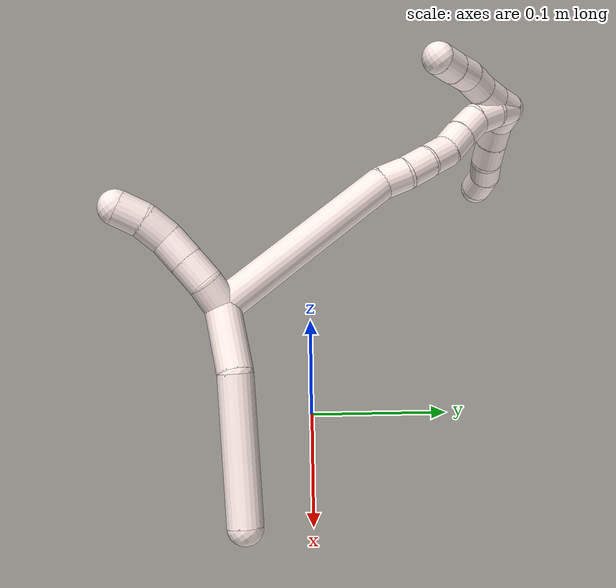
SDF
<sdf version="1.7">
 <world name="default">
  <model name="11">
   <static>0</static>
   <link name="11">
    <collision name="collision-cylinder-e_1_2_8">
     <pose>0.01097 -0.008438 0.019699 0.404694 0.473123 0.098835</pose>
     <geometry><cylinder><radius>0.0125</radius><length>0.048148</length></cylinder></geometry>
     <surface>
      <friction><ode><mu>1.16</mu><mu2>1.16</mu2><slip1>0</slip1><slip2>0</slip2></ode></friction>
      <contact><ode><kp>1e+06</kp><kd>1</kd><max_vel>0</max_vel><min_depth>0.001</min_depth></ode></contact>
     </surface>
    </collision>
    <visual name="visual-cylinder-e_1_2_8">
     <pose>0.01097 -0.008438 0.019699 0.404694 0.473123 0.098835</pose>
     <geometry><cylinder><radius>0.0125</radius><length>0.048148</length></cylinder></geometry>
     <material><ambient>1 0.933333 0.909804 1</ambient></material>
    </visual>
    <collision name="collision-cylinder-e_2_8_6">
     <pose>0.050962 -0.01834 0.081218 0.035005 0.606374 0.010952</pose>
     <geometry><cylinder><radius>0.0125</radius><length>0.101852</length></cylinder></geometry>
     <surface>
      <friction><ode><mu>1.16</mu><mu2>1.16</mu2><slip1>0</slip1><slip2>0</slip2></ode></friction>
      <contact><ode><kp>1e+06</kp><kd>1</kd><max_vel>0</max_vel><min_depth>0.001</min_depth></ode></contact>
     </surface>
    </collision>
    <visual name="visual-cylinder-e_2_8_6">
     <pose>0.050962 -0.01834 0.081218 0.035005 0.606374 0.010952</pose>
     <geometry><cylinder><radius>0.0125</radius><length>0.101852</length></cylinder></geometry>
     <material><ambient>1 0.933333 0.909804 1</ambient></material>
    </visual>
    <collision name="collision-cylinder-e_1_2_9">
     <pose>-0.000371 -0.001494 -0.009881 2.99154 -0.037096 -0.483897</pose>
     <geometry><cylinder><radius>0.0125</radius><length>0.02</length></cylinder></geometry>
     <surface>
      <friction><ode><mu>1.16</mu><mu2>1.16</mu2><slip1>0</slip1><slip2>0</slip2></ode></friction>
      <contact><ode><kp>1e+06</kp><kd>1</kd><max_vel>0</max_vel><min_depth>0.001</min_depth></ode></contact>
     </surface>
    </collision>
    <visual name="visual-cylinder-e_1_2_9">
     <pose>-0.000371 -0.001494 -0.009881 2.99154 -0.037096 -0.483897</pose>
     <geometry><cylinder><radius>0.0125</radius><length>0.02</length></cylinder></geometry>
     <material><ambient>1 0.933333 0.909804 1</ambient></material>
    </visual>
    <collision name="collision-cylinder-e_2_9_10">
     <pose>-0.000367 -0.001848 -0.029689 -3.0273 0.037511 -0.633654</pose>
     <geometry><cylinder><radius>0.0125</radius><length>0.02</length></cylinder></geometry>
     <surface>
      <friction><ode><mu>1.16</mu><mu2>1.16</mu2><slip1>0</slip1><slip2>0</slip2></ode></friction>
      <contact><ode><kp>1e+06</kp><kd>1</kd><max_vel>0</max_vel><min_depth>0.001</min_depth></ode></contact>
     </surface>
    </collision>
    <visual name="visual-cylinder-e_2_9_10">
     <pose>-0.000367 -0.001848 -0.029689 -3.0273 0.037511 -0.633654</pose>
     <geometry><cylinder><radius>0.0125</radius><length>0.02</length></cylinder></geometry>
     <material><ambient>1 0.933333 0.909804 1</ambient></material>
    </visual>
    <collision name="collision-cylinder-e_3_10_11">
     <pose>0.000469 0.000496 -0.049534 -3.0207 0.046077 -0.727575</pose>
     <geometry><cylinder><radius>0.0125</radius><length>0.02</length></cylinder></geometry>
     <surface>
      <friction><ode><mu>1.16</mu><mu2>1.16</mu2><slip1>0</slip1><slip2>0</slip2></ode></friction>
      <contact><ode><kp>1e+06</kp><kd>1</kd><max_vel>0</max_vel><min_depth>0.001</min_depth></ode></contact>
     </surface>
    </collision>
    <visual name="visual-cylinder-e_3_10_11">
     <pose>0.000469 0.000496 -0.049534 -3.0207 0.046077 -0.727575</pose>
     <geometry><cylinder><radius>0.0125</radius><length>0.02</length></cylinder></geometry>
     <material><ambient>1 0.933333 0.909804 1</ambient></material>
    </visual>
    <collision name="collision-cylinder-e_4_11_12">
     <pose>0.003237 0.001118 -0.069163 3.08159 0.232867 2.63929</pose>
     <geometry><cylinder><radius>0.0125</radius><length>0.02</length></cylinder></geometry>
     <surface>
      <friction><ode><mu>1.16</mu><mu2>1.16</mu2><slip1>0</slip1><slip2>0</slip2></ode></friction>
      <contact><ode><kp>1e+06</kp><kd>1</kd><max_vel>0</max_vel><min_depth>0.001</min_depth></ode></contact>
     </surface>
    </collision>
    <visual name="visual-cylinder-e_4_11_12">
     <pose>0.003237 0.001118 -0.069163 3.08159 0.232867 2.63929</pose>
     <geometry><cylinder><radius>0.0125</radius><length>0.02</length></cylinder></geometry>
     <material><ambient>1 0.933333 0.909804 1</ambient></material>
    </visual>
    <collision name="collision-cylinder-e_5_12_5">
     <pose>0.010072 0.000219 -0.087786 3.10621 0.469803 2.99401</pose>
     <geometry><cylinder><radius>0.0125</radius><length>0.02</length></cylinder></geometry>
     <surface>
      <friction><ode><mu>1.16</mu><mu2>1.16</mu2><slip1>0</slip1><slip2>0</slip2></ode></friction>
      <contact><ode><kp>1e+06</kp><kd>1</kd><max_vel>0</max_vel><min_depth>0.001</min_depth></ode></contact>
     </surface>
    </collision>
    <visual name="visual-cylinder-e_5_12_5">
     <pose>0.010072 0.000219 -0.087786 3.10621 0.469803 2.99401</pose>
     <geometry><cylinder><radius>0.0125</radius><length>0.02</length></cylinder></geometry>
     <material><ambient>1 0.933333 0.909804 1</ambient></material>
    </visual>
    <collision name="collision-cylinder-e_1_2_13">
     <pose>-0.075016 0.020421 0.001669 -1.48923 -1.30418 1.22632</pose>
     <geometry><cylinder><radius>0.0125</radius><length>0.155528</length></cylinder></geometry>
     <surface>
      <friction><ode><mu>1.16</mu><mu2>1.16</mu2><slip1>0</slip1><slip2>0</slip2></ode></friction>
      <contact><ode><kp>1e+06</kp><kd>1</kd><max_vel>0</max_vel><min_depth>0.001</min_depth></ode></contact>
     </surface>
    </collision>
    <visual name="visual-cylinder-e_1_2_13">
     <pose>-0.075016 0.020421 0.001669 -1.48923 -1.30418 1.22632</pose>
     <geometry><cylinder><radius>0.0125</radius><length>0.155528</length></cylinder></geometry>
     <material><ambient>1 0.933333 0.909804 1</ambient></material>
    </visual>
    <collision name="collision-cylinder-e_2_13_14">
     <pose>-0.160038 0.041539 0.006181 -0.240862 -1.28625 0.180887</pose>
     <geometry><cylinder><radius>0.0125</radius><length>0.02085</length></cylinder></geometry>
     <surface>
      <friction><ode><mu>1.16</mu><mu2>1.16</mu2><slip1>0</slip1><slip2>0</slip2></ode></friction>
      <contact><ode><kp>1e+06</kp><kd>1</kd><max_vel>0</max_vel><min_depth>0.001</min_depth></ode></contact>
     </surface>
    </collision>
    <visual name="visual-cylinder-e_2_13_14">
     <pose>-0.160038 0.041539 0.006181 -0.240862 -1.28625 0.180887</pose>
     <geometry><cylinder><radius>0.0125</radius><length>0.02085</length></cylinder></geometry>
     <material><ambient>1 0.933333 0.909804 1</ambient></material>
    </visual>
    <collision name="collision-cylinder-e_3_14_15">
     <pose>-0.180209 0.044958 0.010708 -1.01629 -1.26581 0.7757</pose>
     <geometry><cylinder><radius>0.0125</radius><length>0.021314</length></cylinder></geometry>
     <surface>
      <friction><ode><mu>1.16</mu><mu2>1.16</mu2><slip1>0</slip1><slip2>0</slip2></ode></friction>
      <contact><ode><kp>1e+06</kp><kd>1</kd><max_vel>0</max_vel><min_depth>0.001</min_depth></ode></contact>
     </surface>
    </collision>
    <visual name="visual-cylinder-e_3_14_15">
     <pose>-0.180209 0.044958 0.010708 -1.01629 -1.26581 0.7757</pose>
     <geometry><cylinder><radius>0.0125</radius><length>0.021314</length></cylinder></geometry>
     <material><ambient>1 0.933333 0.909804 1</ambient></material>
    </visual>
    <collision name="collision-cylinder-e_4_15_16">
     <pose>-0.199951 0.052087 0.014011 -1.21896 -1.11488 0.820978</pose>
     <geometry><cylinder><radius>0.0125</radius><length>0.021332</length></cylinder></geometry>
     <surface>
      <friction><ode><mu>1.16</mu><mu2>1.16</mu2><slip1>0</slip1><slip2>0</slip2></ode></friction>
      <contact><ode><kp>1e+06</kp><kd>1</kd><max_vel>0</max_vel><min_depth>0.001</min_depth></ode></contact>
     </surface>
    </collision>
    <visual name="visual-cylinder-e_4_15_16">
     <pose>-0.199951 0.052087 0.014011 -1.21896 -1.11488 0.820978</pose>
     <geometry><cylinder><radius>0.0125</radius><length>0.021332</length></cylinder></geometry>
     <material><ambient>1 0.933333 0.909804 1</ambient></material>
    </visual>
    <collision name="collision-cylinder-e_5_16_17">
     <pose>-0.219001 0.059908 0.014235 -1.95874 -1.19968 1.58891</pose>
     <geometry><cylinder><radius>0.0125</radius><length>0.020331</length></cylinder></geometry>
     <surface>
      <friction><ode><mu>1.16</mu><mu2>1.16</mu2><slip1>0</slip1><slip2>0</slip2></ode></friction>
      <contact><ode><kp>1e+06</kp><kd>1</kd><max_vel>0</max_vel><min_depth>0.001</min_depth></ode></contact>
     </surface>
    </collision>
    <visual name="visual-cylinder-e_5_16_17">
     <pose>-0.219001 0.059908 0.014235 -1.95874 -1.19968 1.58891</pose>
     <geometry><cylinder><radius>0.0125</radius><length>0.020331</length></cylinder></geometry>
     <material><ambient>1 0.933333 0.909804 1</ambient></material>
    </visual>
    <collision name="collision-cylinder-e_6_17_18">
     <pose>-0.237967 0.066817 0.012036 -1.79686 -1.20942 1.42977</pose>
     <geometry><cylinder><radius>0.0125</radius><length>0.020296</length></cylinder></geometry>
     <surface>
      <friction><ode><mu>1.16</mu><mu2>1.16</mu2><slip1>0</slip1><slip2>0</slip2></ode></friction>
      <contact><ode><kp>1e+06</kp><kd>1</kd><max_vel>0</max_vel><min_depth>0.001</min_depth></ode></contact>
     </surface>
    </collision>
    <visual name="visual-cylinder-e_6_17_18">
     <pose>-0.237967 0.066817 0.012036 -1.79686 -1.20942 1.42977</pose>
     <geometry><cylinder><radius>0.0125</radius><length>0.020296</length></cylinder></geometry>
     <material><ambient>1 0.933333 0.909804 1</ambient></material>
    </visual>
    <collision name="collision-cylinder-e_7_18_19">
     <pose>-0.256428 0.074029 0.013746 -0.975736 -1.10703 0.633736</pose>
     <geometry><cylinder><radius>0.0125</radius><length>0.020054</length></cylinder></geometry>
     <surface>
      <friction><ode><mu>1.16</mu><mu2>1.16</mu2><slip1>0</slip1><slip2>0</slip2></ode></friction>
      <contact><ode><kp>1e+06</kp><kd>1</kd><max_vel>0</max_vel><min_depth>0.001</min_depth></ode></contact>
     </surface>
    </collision>
    <visual name="visual-cylinder-e_7_18_19">
     <pose>-0.256428 0.074029 0.013746 -0.975736 -1.10703 0.633736</pose>
     <geometry><cylinder><radius>0.0125</radius><length>0.020054</length></cylinder></geometry>
     <material><ambient>1 0.933333 0.909804 1</ambient></material>
    </visual>
    <collision name="collision-cylinder-e_8_19_1">
     <pose>-0.273172 0.083677 0.018959 -1.14405 -0.873172 0.583685</pose>
     <geometry><cylinder><radius>0.0125</radius><length>0.020295</length></cylinder></geometry>
     <surface>
      <friction><ode><mu>1.16</mu><mu2>1.16</mu2><slip1>0</slip1><slip2>0</slip2></ode></friction>
      <contact><ode><kp>1e+06</kp><kd>1</kd><max_vel>0</max_vel><min_depth>0.001</min_depth></ode></contact>
     </surface>
    </collision>
    <visual name="visual-cylinder-e_8_19_1">
     <pose>-0.273172 0.083677 0.018959 -1.14405 -0.873172 0.583685</pose>
     <geometry><cylinder><radius>0.0125</radius><length>0.020295</length></cylinder></geometry>
     <material><ambient>1 0.933333 0.909804 1</ambient></material>
    </visual>
    <collision name="collision-cylinder-e_1_1_20">
     <pose>-0.27644 0.083494 0.015157 2.38659 0.467756 1.08205</pose>
     <geometry><cylinder><radius>0.0125</radius><length>0.02</length></cylinder></geometry>
     <surface>
      <friction><ode><mu>1.16</mu><mu2>1.16</mu2><slip1>0</slip1><slip2>0</slip2></ode></friction>
      <contact><ode><kp>1e+06</kp><kd>1</kd><max_vel>0</max_vel><min_depth>0.001</min_depth></ode></contact>
     </surface>
    </collision>
    <visual name="visual-cylinder-e_1_1_20">
     <pose>-0.27644 0.083494 0.015157 2.38659 0.467756 1.08205</pose>
     <geometry><cylinder><radius>0.0125</radius><length>0.02</length></cylinder></geometry>
     <material><ambient>1 0.933333 0.909804 1</ambient></material>
    </visual>
    <collision name="collision-cylinder-e_2_20_21">
     <pose>-0.267838 0.071121 0.002014 2.3861 0.421677 0.98927</pose>
     <geometry><cylinder><radius>0.0125</radius><length>0.02</length></cylinder></geometry>
     <surface>
      <friction><ode><mu>1.16</mu><mu2>1.16</mu2><slip1>0</slip1><slip2>0</slip2></ode></friction>
      <contact><ode><kp>1e+06</kp><kd>1</kd><max_vel>0</max_vel><min_depth>0.001</min_depth></ode></contact>
     </surface>
    </collision>
    <visual name="visual-cylinder-e_2_20_21">
     <pose>-0.267838 0.071121 0.002014 2.3861 0.421677 0.98927</pose>
     <geometry><cylinder><radius>0.0125</radius><length>0.02</length></cylinder></geometry>
     <material><ambient>1 0.933333 0.909804 1</ambient></material>
    </visual>
    <collision name="collision-cylinder-e_3_21_22">
     <pose>-0.260573 0.058617 -0.011761 2.42225 0.322792 0.817217</pose>
     <geometry><cylinder><radius>0.0125</radius><length>0.02</length></cylinder></geometry>
     <surface>
      <friction><ode><mu>1.16</mu><mu2>1.16</mu2><slip1>0</slip1><slip2>0</slip2></ode></friction>
      <contact><ode><kp>1e+06</kp><kd>1</kd><max_vel>0</max_vel><min_depth>0.001</min_depth></ode></contact>
     </surface>
    </collision>
    <visual name="visual-cylinder-e_3_21_22">
     <pose>-0.260573 0.058617 -0.011761 2.42225 0.322792 0.817217</pose>
     <geometry><cylinder><radius>0.0125</radius><length>0.02</length></cylinder></geometry>
     <material><ambient>1 0.933333 0.909804 1</ambient></material>
    </visual>
    <collision name="collision-cylinder-e_4_22_23">
     <pose>-0.252443 0.045873 -0.024659 2.29664 0.518755 1.06647</pose>
     <geometry><cylinder><radius>0.0125</radius><length>0.02</length></cylinder></geometry>
     <surface>
      <friction><ode><mu>1.16</mu><mu2>1.16</mu2><slip1>0</slip1><slip2>0</slip2></ode></friction>
      <contact><ode><kp>1e+06</kp><kd>1</kd><max_vel>0</max_vel><min_depth>0.001</min_depth></ode></contact>
     </surface>
    </collision>
    <visual name="visual-cylinder-e_4_22_23">
     <pose>-0.252443 0.045873 -0.024659 2.29664 0.518755 1.06647</pose>
     <geometry><cylinder><radius>0.0125</radius><length>0.02</length></cylinder></geometry>
     <material><ambient>1 0.933333 0.909804 1</ambient></material>
    </visual>
    <collision name="collision-cylinder-e_5_23_4">
     <pose>-0.242823 0.033065 -0.036622 2.34708 0.484971 1.0654</pose>
     <geometry><cylinder><radius>0.0125</radius><length>0.02</length></cylinder></geometry>
     <surface>
      <friction><ode><mu>1.16</mu><mu2>1.16</mu2><slip1>0</slip1><slip2>0</slip2></ode></friction>
      <contact><ode><kp>1e+06</kp><kd>1</kd><max_vel>0</max_vel><min_depth>0.001</min_depth></ode></contact>
     </surface>
    </collision>
    <visual name="visual-cylinder-e_5_23_4">
     <pose>-0.242823 0.033065 -0.036622 2.34708 0.484971 1.0654</pose>
     <geometry><cylinder><radius>0.0125</radius><length>0.02</length></cylinder></geometry>
     <material><ambient>1 0.933333 0.909804 1</ambient></material>
    </visual>
    <collision name="collision-cylinder-e_1_1_24">
     <pose>-0.277158 0.098515 0.024175 -1.29525 0.388829 -0.295725</pose>
     <geometry><cylinder><radius>0.0125</radius><length>0.02</length></cylinder></geometry>
     <surface>
      <friction><ode><mu>1.16</mu><mu2>1.16</mu2><slip1>0</slip1><slip2>0</slip2></ode></friction>
      <contact><ode><kp>1e+06</kp><kd>1</kd><max_vel>0</max_vel><min_depth>0.001</min_depth></ode></contact>
     </surface>
    </collision>
    <visual name="visual-cylinder-e_1_1_24">
     <pose>-0.277158 0.098515 0.024175 -1.29525 0.388829 -0.295725</pose>
     <geometry><cylinder><radius>0.0125</radius><length>0.02</length></cylinder></geometry>
     <material><ambient>1 0.933333 0.909804 1</ambient></material>
    </visual>
    <collision name="collision-cylinder-e_2_24_25">
     <pose>-0.268981 0.114621 0.032069 -0.929434 0.454071 -0.230609</pose>
     <geometry><cylinder><radius>0.0125</radius><length>0.02</length></cylinder></geometry>
     <surface>
      <friction><ode><mu>1.16</mu><mu2>1.16</mu2><slip1>0</slip1><slip2>0</slip2></ode></friction>
      <contact><ode><kp>1e+06</kp><kd>1</kd><max_vel>0</max_vel><min_depth>0.001</min_depth></ode></contact>
     </surface>
    </collision>
    <visual name="visual-cylinder-e_2_24_25">
     <pose>-0.268981 0.114621 0.032069 -0.929434 0.454071 -0.230609</pose>
     <geometry><cylinder><radius>0.0125</radius><length>0.02</length></cylinder></geometry>
     <material><ambient>1 0.933333 0.909804 1</ambient></material>
    </visual>
    <collision name="collision-cylinder-e_3_25_26">
     <pose>-0.260466 0.129177 0.042818 -0.939954 0.425556 -0.218603</pose>
     <geometry><cylinder><radius>0.0125</radius><length>0.02</length></cylinder></geometry>
     <surface>
      <friction><ode><mu>1.16</mu><mu2>1.16</mu2><slip1>0</slip1><slip2>0</slip2></ode></friction>
      <contact><ode><kp>1e+06</kp><kd>1</kd><max_vel>0</max_vel><min_depth>0.001</min_depth></ode></contact>
     </surface>
    </collision>
    <visual name="visual-cylinder-e_3_25_26">
     <pose>-0.260466 0.129177 0.042818 -0.939954 0.425556 -0.218603</pose>
     <geometry><cylinder><radius>0.0125</radius><length>0.02</length></cylinder></geometry>
     <material><ambient>1 0.933333 0.909804 1</ambient></material>
    </visual>
    <collision name="collision-cylinder-e_4_26_27">
     <pose>-0.254865 0.145034 0.053245 -1.03437 0.147771 -0.08416</pose>
     <geometry><cylinder><radius>0.0125</radius><length>0.02</length></cylinder></geometry>
     <surface>
      <friction><ode><mu>1.16</mu><mu2>1.16</mu2><slip1>0</slip1><slip2>0</slip2></ode></friction>
      <contact><ode><kp>1e+06</kp><kd>1</kd><max_vel>0</max_vel><min_depth>0.001</min_depth></ode></contact>
     </surface>
    </collision>
    <visual name="visual-cylinder-e_4_26_27">
     <pose>-0.254865 0.145034 0.053245 -1.03437 0.147771 -0.08416</pose>
     <geometry><cylinder><radius>0.0125</radius><length>0.02</length></cylinder></geometry>
     <material><ambient>1 0.933333 0.909804 1</ambient></material>
    </visual>
    <collision name="collision-cylinder-e_5_27_3">
     <pose>-0.249627 0.162381 0.06105 -1.26937 0.386112 -0.285921</pose>
     <geometry><cylinder><radius>0.0125</radius><length>0.02</length></cylinder></geometry>
     <surface>
      <friction><ode><mu>1.16</mu><mu2>1.16</mu2><slip1>0</slip1><slip2>0</slip2></ode></friction>
      <contact><ode><kp>1e+06</kp><kd>1</kd><max_vel>0</max_vel><min_depth>0.001</min_depth></ode></contact>
     </surface>
    </collision>
    <visual name="visual-cylinder-e_5_27_3">
     <pose>-0.249627 0.162381 0.06105 -1.26937 0.386112 -0.285921</pose>
     <geometry><cylinder><radius>0.0125</radius><length>0.02</length></cylinder></geometry>
     <material><ambient>1 0.933333 0.909804 1</ambient></material>
    </visual>
    <collision name="collision-sphere-3">
     <pose>-0.245861 0.171228 0.0638 0 -0 0</pose>
     <geometry><sphere><radius>0.0125</radius></sphere></geometry>
     <surface>
      <friction><ode><mu>1.16</mu><mu2>1.16</mu2><slip1>0</slip1><slip2>0</slip2></ode></friction>
      <contact><ode><kp>1e+06</kp><kd>1</kd><max_vel>0</max_vel><min_depth>0.001</min_depth></ode></contact>
     </surface>
    </collision>
    <visual name="visual-sphere-3">
     <pose>-0.245861 0.171228 0.0638 0 -0 0</pose>
     <geometry><sphere><radius>0.0125</radius></sphere></geometry>
     <material><ambient>1 0.933333 0.909804 1</ambient></material>
    </visual>
    <collision name="collision-sphere-27">
     <pose>-0.253393 0.153535 0.0583 0 -0 0</pose>
     <geometry><sphere><radius>0.0125</radius></sphere></geometry>
     <surface>
      <friction><ode><mu>1.16</mu><mu2>1.16</mu2><slip1>0</slip1><slip2>0</slip2></ode></friction>
      <contact><ode><kp>1e+06</kp><kd>1</kd><max_vel>0</max_vel><min_depth>0.001</min_depth></ode></contact>
     </surface>
    </collision>
    <visual name="visual-sphere-27">
     <pose>-0.253393 0.153535 0.0583 0 -0 0</pose>
     <geometry><sphere><radius>0.0125</radius></sphere></geometry>
     <material><ambient>1 0.933333 0.909804 1</ambient></material>
    </visual>
    <collision name="collision-sphere-26">
     <pose>-0.256338 0.136532 0.04819 0 -0 0</pose>
     <geometry><sphere><radius>0.0125</radius></sphere></geometry>
     <surface>
      <friction><ode><mu>1.16</mu><mu2>1.16</mu2><slip1>0</slip1><slip2>0</slip2></ode></friction>
      <contact><ode><kp>1e+06</kp><kd>1</kd><max_vel>0</max_vel><min_depth>0.001</min_depth></ode></contact>
     </surface>
    </collision>
    <visual name="visual-sphere-26">
     <pose>-0.256338 0.136532 0.04819 0 -0 0</pose>
     <geometry><sphere><radius>0.0125</radius></sphere></geometry>
     <material><ambient>1 0.933333 0.909804 1</ambient></material>
    </visual>
    <collision name="collision-sphere-25">
     <pose>-0.264594 0.121822 0.037445 0 -0 0</pose>
     <geometry><sphere><radius>0.0125</radius></sphere></geometry>
     <surface>
      <friction><ode><mu>1.16</mu><mu2>1.16</mu2><slip1>0</slip1><slip2>0</slip2></ode></friction>
      <contact><ode><kp>1e+06</kp><kd>1</kd><max_vel>0</max_vel><min_depth>0.001</min_depth></ode></contact>
     </surface>
    </collision>
    <visual name="visual-sphere-25">
     <pose>-0.264594 0.121822 0.037445 0 -0 0</pose>
     <geometry><sphere><radius>0.0125</radius></sphere></geometry>
     <material><ambient>1 0.933333 0.909804 1</ambient></material>
    </visual>
    <collision name="collision-sphere-24">
     <pose>-0.273367 0.10742 0.026692 0 -0 0</pose>
     <geometry><sphere><radius>0.0125</radius></sphere></geometry>
     <surface>
      <friction><ode><mu>1.16</mu><mu2>1.16</mu2><slip1>0</slip1><slip2>0</slip2></ode></friction>
      <contact><ode><kp>1e+06</kp><kd>1</kd><max_vel>0</max_vel><min_depth>0.001</min_depth></ode></contact>
     </surface>
    </collision>
    <visual name="visual-sphere-24">
     <pose>-0.273367 0.10742 0.026692 0 -0 0</pose>
     <geometry><sphere><radius>0.0125</radius></sphere></geometry>
     <material><ambient>1 0.933333 0.909804 1</ambient></material>
    </visual>
    <collision name="collision-sphere-4">
     <pose>-0.238162 0.026753 -0.042821 0 -0 0</pose>
     <geometry><sphere><radius>0.0125</radius></sphere></geometry>
     <surface>
      <friction><ode><mu>1.16</mu><mu2>1.16</mu2><slip1>0</slip1><slip2>0</slip2></ode></friction>
      <contact><ode><kp>1e+06</kp><kd>1</kd><max_vel>0</max_vel><min_depth>0.001</min_depth></ode></contact>
     </surface>
    </collision>
    <visual name="visual-sphere-4">
     <pose>-0.238162 0.026753 -0.042821 0 -0 0</pose>
     <geometry><sphere><radius>0.0125</radius></sphere></geometry>
     <material><ambient>1 0.933333 0.909804 1</ambient></material>
    </visual>
    <collision name="collision-sphere-23">
     <pose>-0.247485 0.039378 -0.030424 0 -0 0</pose>
     <geometry><sphere><radius>0.0125</radius></sphere></geometry>
     <surface>
      <friction><ode><mu>1.16</mu><mu2>1.16</mu2><slip1>0</slip1><slip2>0</slip2></ode></friction>
      <contact><ode><kp>1e+06</kp><kd>1</kd><max_vel>0</max_vel><min_depth>0.001</min_depth></ode></contact>
     </surface>
    </collision>
    <visual name="visual-sphere-23">
     <pose>-0.247485 0.039378 -0.030424 0 -0 0</pose>
     <geometry><sphere><radius>0.0125</radius></sphere></geometry>
     <material><ambient>1 0.933333 0.909804 1</ambient></material>
    </visual>
    <collision name="collision-sphere-22">
     <pose>-0.257401 0.052368 -0.018895 0 -0 0</pose>
     <geometry><sphere><radius>0.0125</radius></sphere></geometry>
     <surface>
      <friction><ode><mu>1.16</mu><mu2>1.16</mu2><slip1>0</slip1><slip2>0</slip2></ode></friction>
      <contact><ode><kp>1e+06</kp><kd>1</kd><max_vel>0</max_vel><min_depth>0.001</min_depth></ode></contact>
     </surface>
    </collision>
    <visual name="visual-sphere-22">
     <pose>-0.257401 0.052368 -0.018895 0 -0 0</pose>
     <geometry><sphere><radius>0.0125</radius></sphere></geometry>
     <material><ambient>1 0.933333 0.909804 1</ambient></material>
    </visual>
    <collision name="collision-sphere-21">
     <pose>-0.263746 0.064866 -0.004627 0 -0 0</pose>
     <geometry><sphere><radius>0.0125</radius></sphere></geometry>
     <surface>
      <friction><ode><mu>1.16</mu><mu2>1.16</mu2><slip1>0</slip1><slip2>0</slip2></ode></friction>
      <contact><ode><kp>1e+06</kp><kd>1</kd><max_vel>0</max_vel><min_depth>0.001</min_depth></ode></contact>
     </surface>
    </collision>
    <visual name="visual-sphere-21">
     <pose>-0.263746 0.064866 -0.004627 0 -0 0</pose>
     <geometry><sphere><radius>0.0125</radius></sphere></geometry>
     <material><ambient>1 0.933333 0.909804 1</ambient></material>
    </visual>
    <collision name="collision-sphere-20">
     <pose>-0.271931 0.077377 0.008656 0 -0 0</pose>
     <geometry><sphere><radius>0.0125</radius></sphere></geometry>
     <surface>
      <friction><ode><mu>1.16</mu><mu2>1.16</mu2><slip1>0</slip1><slip2>0</slip2></ode></friction>
      <contact><ode><kp>1e+06</kp><kd>1</kd><max_vel>0</max_vel><min_depth>0.001</min_depth></ode></contact>
     </surface>
    </collision>
    <visual name="visual-sphere-20">
     <pose>-0.271931 0.077377 0.008656 0 -0 0</pose>
     <geometry><sphere><radius>0.0125</radius></sphere></geometry>
     <material><ambient>1 0.933333 0.909804 1</ambient></material>
    </visual>
    <collision name="collision-sphere-11">
     <pose>0.00093 0.001701 -0.05945 0 -0 0</pose>
     <geometry><sphere><radius>0.0125</radius></sphere></geometry>
     <surface>
      <friction><ode><mu>1.16</mu><mu2>1.16</mu2><slip1>0</slip1><slip2>0</slip2></ode></friction>
      <contact><ode><kp>1e+06</kp><kd>1</kd><max_vel>0</max_vel><min_depth>0.001</min_depth></ode></contact>
     </surface>
    </collision>
    <visual name="visual-sphere-11">
     <pose>0.00093 0.001701 -0.05945 0 -0 0</pose>
     <geometry><sphere><radius>0.0125</radius></sphere></geometry>
     <material><ambient>1 0.933333 0.909804 1</ambient></material>
    </visual>
    <collision name="collision-sphere-10">
     <pose>8e-06 -0.000708 -0.039617 0 -0 0</pose>
     <geometry><sphere><radius>0.0125</radius></sphere></geometry>
     <surface>
      <friction><ode><mu>1.16</mu><mu2>1.16</mu2><slip1>0</slip1><slip2>0</slip2></ode></friction>
      <contact><ode><kp>1e+06</kp><kd>1</kd><max_vel>0</max_vel><min_depth>0.001</min_depth></ode></contact>
     </surface>
    </collision>
    <visual name="visual-sphere-10">
     <pose>8e-06 -0.000708 -0.039617 0 -0 0</pose>
     <geometry><sphere><radius>0.0125</radius></sphere></geometry>
     <material><ambient>1 0.933333 0.909804 1</ambient></material>
    </visual>
    <collision name="collision-sphere-6">
     <pose>0.079984 -0.019804 0.123039 0 -0 0</pose>
     <geometry><sphere><radius>0.0125</radius></sphere></geometry>
     <surface>
      <friction><ode><mu>1.16</mu><mu2>1.16</mu2><slip1>0</slip1><slip2>0</slip2></ode></friction>
      <contact><ode><kp>1e+06</kp><kd>1</kd><max_vel>0</max_vel><min_depth>0.001</min_depth></ode></contact>
     </surface>
    </collision>
    <visual name="visual-sphere-6">
     <pose>0.079984 -0.019804 0.123039 0 -0 0</pose>
     <geometry><sphere><radius>0.0125</radius></sphere></geometry>
     <material><ambient>1 0.933333 0.909804 1</ambient></material>
    </visual>
    <collision name="collision-sphere-9">
     <pose>-0.000742 -0.002988 -0.019762 0 -0 0</pose>
     <geometry><sphere><radius>0.0125</radius></sphere></geometry>
     <surface>
      <friction><ode><mu>1.16</mu><mu2>1.16</mu2><slip1>0</slip1><slip2>0</slip2></ode></friction>
      <contact><ode><kp>1e+06</kp><kd>1</kd><max_vel>0</max_vel><min_depth>0.001</min_depth></ode></contact>
     </surface>
    </collision>
    <visual name="visual-sphere-9">
     <pose>-0.000742 -0.002988 -0.019762 0 -0 0</pose>
     <geometry><sphere><radius>0.0125</radius></sphere></geometry>
     <material><ambient>1 0.933333 0.909804 1</ambient></material>
    </visual>
    <collision name="collision-sphere-2">
     <geometry><sphere><radius>0.0125</radius></sphere></geometry>
     <surface>
      <friction><ode><mu>1.16</mu><mu2>1.16</mu2><slip1>0</slip1><slip2>0</slip2></ode></friction>
      <contact><ode><kp>1e+06</kp><kd>1</kd><max_vel>0</max_vel><min_depth>0.001</min_depth></ode></contact>
     </surface>
    </collision>
    <visual name="visual-sphere-2">
     <geometry><sphere><radius>0.0125</radius></sphere></geometry>
     <material><ambient>1 0.933333 0.909804 1</ambient></material>
    </visual>
    <collision name="collision-sphere-19">
     <pose>-0.265396 0.077743 0.016261 0 -0 0</pose>
     <geometry><sphere><radius>0.0125</radius></sphere></geometry>
     <surface>
      <friction><ode><mu>1.16</mu><mu2>1.16</mu2><slip1>0</slip1><slip2>0</slip2></ode></friction>
      <contact><ode><kp>1e+06</kp><kd>1</kd><max_vel>0</max_vel><min_depth>0.001</min_depth></ode></contact>
     </surface>
    </collision>
    <visual name="visual-sphere-19">
     <pose>-0.265396 0.077743 0.016261 0 -0 0</pose>
     <geometry><sphere><radius>0.0125</radius></sphere></geometry>
     <material><ambient>1 0.933333 0.909804 1</ambient></material>
    </visual>
    <collision name="collision-sphere-8">
     <pose>0.02194 -0.016875 0.039397 0 -0 0</pose>
     <geometry><sphere><radius>0.0125</radius></sphere></geometry>
     <surface>
      <friction><ode><mu>1.16</mu><mu2>1.16</mu2><slip1>0</slip1><slip2>0</slip2></ode></friction>
      <contact><ode><kp>1e+06</kp><kd>1</kd><max_vel>0</max_vel><min_depth>0.001</min_depth></ode></contact>
     </surface>
    </collision>
    <visual name="visual-sphere-8">
     <pose>0.02194 -0.016875 0.039397 0 -0 0</pose>
     <geometry><sphere><radius>0.0125</radius></sphere></geometry>
     <material><ambient>1 0.933333 0.909804 1</ambient></material>
    </visual>
    <collision name="collision-sphere-12">
     <pose>0.005545 0.000534 -0.078875 0 -0 0</pose>
     <geometry><sphere><radius>0.0125</radius></sphere></geometry>
     <surface>
      <friction><ode><mu>1.16</mu><mu2>1.16</mu2><slip1>0</slip1><slip2>0</slip2></ode></friction>
      <contact><ode><kp>1e+06</kp><kd>1</kd><max_vel>0</max_vel><min_depth>0.001</min_depth></ode></contact>
     </surface>
    </collision>
    <visual name="visual-sphere-12">
     <pose>0.005545 0.000534 -0.078875 0 -0 0</pose>
     <geometry><sphere><radius>0.0125</radius></sphere></geometry>
     <material><ambient>1 0.933333 0.909804 1</ambient></material>
    </visual>
    <collision name="collision-sphere-5">
     <pose>0.014599 -9.7e-05 -0.096697 0 -0 0</pose>
     <geometry><sphere><radius>0.0125</radius></sphere></geometry>
     <surface>
      <friction><ode><mu>1.16</mu><mu2>1.16</mu2><slip1>0</slip1><slip2>0</slip2></ode></friction>
      <contact><ode><kp>1e+06</kp><kd>1</kd><max_vel>0</max_vel><min_depth>0.001</min_depth></ode></contact>
     </surface>
    </collision>
    <visual name="visual-sphere-5">
     <pose>0.014599 -9.7e-05 -0.096697 0 -0 0</pose>
     <geometry><sphere><radius>0.0125</radius></sphere></geometry>
     <material><ambient>1 0.933333 0.909804 1</ambient></material>
    </visual>
    <collision name="collision-sphere-13">
     <pose>-0.150033 0.040841 0.003339 0 -0 0</pose>
     <geometry><sphere><radius>0.0125</radius></sphere></geometry>
     <surface>
      <friction><ode><mu>1.16</mu><mu2>1.16</mu2><slip1>0</slip1><slip2>0</slip2></ode></friction>
      <contact><ode><kp>1e+06</kp><kd>1</kd><max_vel>0</max_vel><min_depth>0.001</min_depth></ode></contact>
     </surface>
    </collision>
    <visual name="visual-sphere-13">
     <pose>-0.150033 0.040841 0.003339 0 -0 0</pose>
     <geometry><sphere><radius>0.0125</radius></sphere></geometry>
     <material><ambient>1 0.933333 0.909804 1</ambient></material>
    </visual>
    <collision name="collision-sphere-14">
     <pose>-0.170044 0.042237 0.009023 0 -0 0</pose>
     <geometry><sphere><radius>0.0125</radius></sphere></geometry>
     <surface>
      <friction><ode><mu>1.16</mu><mu2>1.16</mu2><slip1>0</slip1><slip2>0</slip2></ode></friction>
      <contact><ode><kp>1e+06</kp><kd>1</kd><max_vel>0</max_vel><min_depth>0.001</min_depth></ode></contact>
     </surface>
    </collision>
    <visual name="visual-sphere-14">
     <pose>-0.170044 0.042237 0.009023 0 -0 0</pose>
     <geometry><sphere><radius>0.0125</radius></sphere></geometry>
     <material><ambient>1 0.933333 0.909804 1</ambient></material>
    </visual>
    <collision name="collision-sphere-15">
     <pose>-0.190374 0.047679 0.012393 0 -0 0</pose>
     <geometry><sphere><radius>0.0125</radius></sphere></geometry>
     <surface>
      <friction><ode><mu>1.16</mu><mu2>1.16</mu2><slip1>0</slip1><slip2>0</slip2></ode></friction>
      <contact><ode><kp>1e+06</kp><kd>1</kd><max_vel>0</max_vel><min_depth>0.001</min_depth></ode></contact>
     </surface>
    </collision>
    <visual name="visual-sphere-15">
     <pose>-0.190374 0.047679 0.012393 0 -0 0</pose>
     <geometry><sphere><radius>0.0125</radius></sphere></geometry>
     <material><ambient>1 0.933333 0.909804 1</ambient></material>
    </visual>
    <collision name="collision-sphere-16">
     <pose>-0.209528 0.056495 0.01563 0 -0 0</pose>
     <geometry><sphere><radius>0.0125</radius></sphere></geometry>
     <surface>
      <friction><ode><mu>1.16</mu><mu2>1.16</mu2><slip1>0</slip1><slip2>0</slip2></ode></friction>
      <contact><ode><kp>1e+06</kp><kd>1</kd><max_vel>0</max_vel><min_depth>0.001</min_depth></ode></contact>
     </surface>
    </collision>
    <visual name="visual-sphere-16">
     <pose>-0.209528 0.056495 0.01563 0 -0 0</pose>
     <geometry><sphere><radius>0.0125</radius></sphere></geometry>
     <material><ambient>1 0.933333 0.909804 1</ambient></material>
    </visual>
    <collision name="collision-sphere-17">
     <pose>-0.228475 0.063321 0.01284 0 -0 0</pose>
     <geometry><sphere><radius>0.0125</radius></sphere></geometry>
     <surface>
      <friction><ode><mu>1.16</mu><mu2>1.16</mu2><slip1>0</slip1><slip2>0</slip2></ode></friction>
      <contact><ode><kp>1e+06</kp><kd>1</kd><max_vel>0</max_vel><min_depth>0.001</min_depth></ode></contact>
     </surface>
    </collision>
    <visual name="visual-sphere-17">
     <pose>-0.228475 0.063321 0.01284 0 -0 0</pose>
     <geometry><sphere><radius>0.0125</radius></sphere></geometry>
     <material><ambient>1 0.933333 0.909804 1</ambient></material>
    </visual>
    <collision name="collision-sphere-18">
     <pose>-0.24746 0.070314 0.011232 0 -0 0</pose>
     <geometry><sphere><radius>0.0125</radius></sphere></geometry>
     <surface>
      <friction><ode><mu>1.16</mu><mu2>1.16</mu2><slip1>0</slip1><slip2>0</slip2></ode></friction>
      <contact><ode><kp>1e+06</kp><kd>1</kd><max_vel>0</max_vel><min_depth>0.001</min_depth></ode></contact>
     </surface>
    </collision>
    <visual name="visual-sphere-18">
     <pose>-0.24746 0.070314 0.011232 0 -0 0</pose>
     <geometry><sphere><radius>0.0125</radius></sphere></geometry>
     <material><ambient>1 0.933333 0.909804 1</ambient></material>
    </visual>
    <collision name="collision-sphere-1">
     <pose>-0.280949 0.089611 0.021657 0 -0 0</pose>
     <geometry><sphere><radius>0.0125</radius></sphere></geometry>
     <surface>
      <friction><ode><mu>1.16</mu><mu2>1.16</mu2><slip1>0</slip1><slip2>0</slip2></ode></friction>
      <contact><ode><kp>1e+06</kp><kd>1</kd><max_vel>0</max_vel><min_depth>0.001</min_depth></ode></contact>
     </surface>
    </collision>
    <visual name="visual-sphere-1">
     <pose>-0.280949 0.089611 0.021657 0 -0 0</pose>
     <geometry><sphere><radius>0.0125</radius></sphere></geometry>
     <material><ambient>1 0.933333 0.909804 1</ambient></material>
    </visual>
    <inertial>
     <pose>-0.119098 0.037869 0.012745 0 -0 0</pose>
     <mass>0.75</mass>
     <inertia>
      <ixx>0.000206</ixx>
      <ixy>0</ixy>
      <ixz>0</ixz>
      <iyy>0.000505</iyy>
      <iyz>0</iyz>
      <izz>0.000173</izz>
     </inertia>
    </inertial>
   </link>
   <pose>-0.000713 -0.059854 0.114274 -2.30523 0.354319 -0.987512</pose>
  </model>
 </world>
</sdf>
